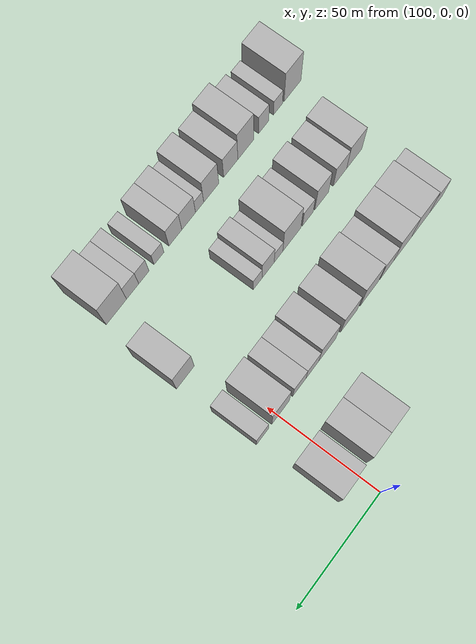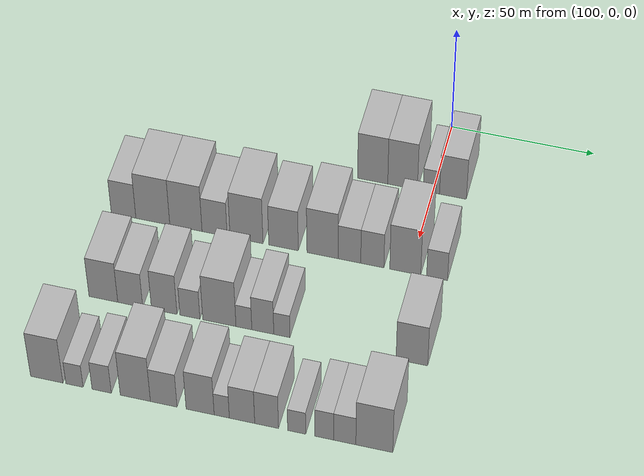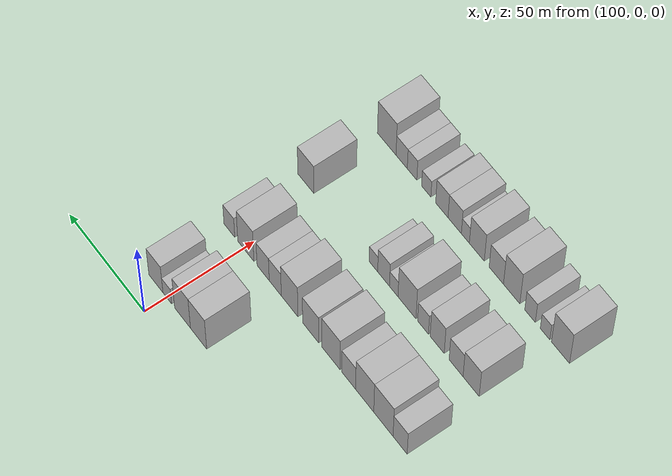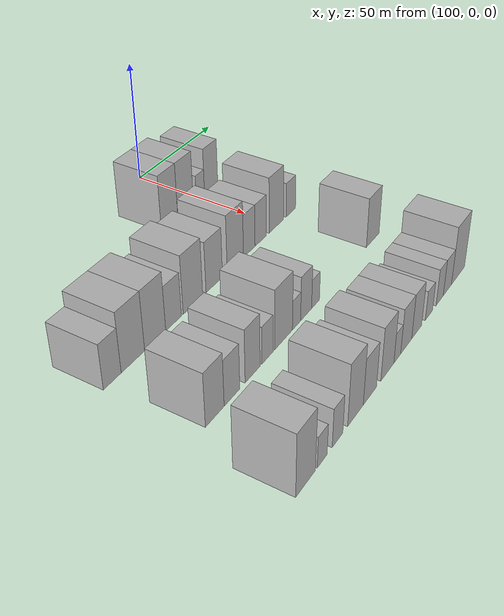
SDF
<sdf version="1.6">
 <world name="default">
  <model name="building_311">
   <static>1</static>
   <pose>120.0000 -20.9619 0 0.000000 0.000000 0.000000</pose>
   <link name="link">
    <pose>0 0 12.00 0 0 0</pose>
    <collision name="collision"><geometry><box><size>20.0000 10.5479 24.0000</size></box></geometry></collision>
    <visual name="visual">
     <cast_shadows>0</cast_shadows>
     <geometry><box><size>20.0000 10.5479 24.0000</size></box></geometry>
     <material>
      <script>
       <uri>model://HANNAS_wall/materials/scripts</uri>
       <uri>model://HANNAS_wall/materials/textures</uri>
       <name>vrc/HANNAS_wall</name>
      </script>
     </material>
    </visual>
   </link>
  </model>
  <model name="building_312">
   <static>1</static>
   <pose>120.0000 -10.5090 0 0.000000 0.000000 0.000000</pose>
   <link name="link">
    <pose>0 0 12.00 0 0 0</pose>
    <collision name="collision"><geometry><box><size>20.0000 10.3579 24.0000</size></box></geometry></collision>
    <visual name="visual">
     <cast_shadows>0</cast_shadows>
     <geometry><box><size>20.0000 10.3579 24.0000</size></box></geometry>
     <material>
      <script>
       <uri>model://HANNAS_wall/materials/scripts</uri>
       <uri>model://HANNAS_wall/materials/textures</uri>
       <name>vrc/HANNAS_wall</name>
      </script>
     </material>
    </visual>
   </link>
  </model>
  <model name="building_313">
   <static>1</static>
   <pose>120.0000 -0.4878 0 0.000000 0.000000 0.000000</pose>
   <link name="link">
    <pose>0 0 6.00 0 0 0</pose>
    <collision name="collision"><geometry><box><size>20.0000 5.6844 12.0000</size></box></geometry></collision>
    <visual name="visual">
     <cast_shadows>0</cast_shadows>
     <geometry><box><size>20.0000 5.6844 12.0000</size></box></geometry>
     <material>
      <script>
       <uri>model://HANNAS_wall/materials/scripts</uri>
       <uri>model://HANNAS_wall/materials/textures</uri>
       <name>vrc/HANNAS_wall</name>
      </script>
     </material>
    </visual>
   </link>
  </model>
  <model name="building_314">
   <static>1</static>
   <pose>120.0000 7.0255 0 0.000000 0.000000 0.000000</pose>
   <link name="link">
    <pose>0 0 10.50 0 0 0</pose>
    <collision name="collision"><geometry><box><size>20.0000 9.3422 21.0000</size></box></geometry></collision>
    <visual name="visual">
     <cast_shadows>0</cast_shadows>
     <geometry><box><size>20.0000 9.3422 21.0000</size></box></geometry>
     <material>
      <script>
       <uri>model://HANNAS_wall/materials/scripts</uri>
       <uri>model://HANNAS_wall/materials/textures</uri>
       <name>vrc/HANNAS_wall</name>
      </script>
     </material>
    </visual>
   </link>
  </model>
  <model name="building_433">
   <static>1</static>
   <pose>155.0000 -98.9779 0 0.000000 0.000000 0.000000</pose>
   <link name="link">
    <pose>0 0 9.00 0 0 0</pose>
    <collision name="collision"><geometry><box><size>20.0000 8.6512 18.0000</size></box></geometry></collision>
    <visual name="visual">
     <cast_shadows>0</cast_shadows>
     <geometry><box><size>20.0000 8.6512 18.0000</size></box></geometry>
     <material>
      <script>
       <uri>model://HANNAS_wall/materials/scripts</uri>
       <uri>model://HANNAS_wall/materials/textures</uri>
       <name>vrc/HANNAS_wall</name>
      </script>
     </material>
    </visual>
   </link>
  </model>
  <model name="building_434">
   <static>1</static>
   <pose>155.0000 -88.7057 0 0.000000 0.000000 0.000000</pose>
   <link name="link">
    <pose>0 0 12.00 0 0 0</pose>
    <collision name="collision"><geometry><box><size>20.0000 11.8933 24.0000</size></box></geometry></collision>
    <visual name="visual">
     <cast_shadows>0</cast_shadows>
     <geometry><box><size>20.0000 11.8933 24.0000</size></box></geometry>
     <material>
      <script>
       <uri>model://HANNAS_wall/materials/scripts</uri>
       <uri>model://HANNAS_wall/materials/textures</uri>
       <name>vrc/HANNAS_wall</name>
      </script>
     </material>
    </visual>
   </link>
  </model>
  <model name="building_435">
   <static>1</static>
   <pose>155.0000 -77.1176 0 0.000000 0.000000 0.000000</pose>
   <link name="link">
    <pose>0 0 12.00 0 0 0</pose>
    <collision name="collision"><geometry><box><size>20.0000 11.2829 24.0000</size></box></geometry></collision>
    <visual name="visual">
     <cast_shadows>0</cast_shadows>
     <geometry><box><size>20.0000 11.2829 24.0000</size></box></geometry>
     <material>
      <script>
       <uri>model://HANNAS_wall/materials/scripts</uri>
       <uri>model://HANNAS_wall/materials/textures</uri>
       <name>vrc/HANNAS_wall</name>
      </script>
     </material>
    </visual>
   </link>
  </model>
  <model name="building_436">
   <static>1</static>
   <pose>155.0000 -67.0982 0 0.000000 0.000000 0.000000</pose>
   <link name="link">
    <pose>0 0 9.00 0 0 0</pose>
    <collision name="collision"><geometry><box><size>20.0000 8.7557 18.0000</size></box></geometry></collision>
    <visual name="visual">
     <cast_shadows>0</cast_shadows>
     <geometry><box><size>20.0000 8.7557 18.0000</size></box></geometry>
     <material>
      <script>
       <uri>model://HANNAS_wall/materials/scripts</uri>
       <uri>model://HANNAS_wall/materials/textures</uri>
       <name>vrc/HANNAS_wall</name>
      </script>
     </material>
    </visual>
   </link>
  </model>
  <model name="building_437">
   <static>1</static>
   <pose>155.0000 -55.9960 0 0.000000 0.000000 0.000000</pose>
   <link name="link">
    <pose>0 0 12.00 0 0 0</pose>
    <collision name="collision"><geometry><box><size>20.0000 11.4488 24.0000</size></box></geometry></collision>
    <visual name="visual">
     <cast_shadows>0</cast_shadows>
     <geometry><box><size>20.0000 11.4488 24.0000</size></box></geometry>
     <material>
      <script>
       <uri>model://HANNAS_wall/materials/scripts</uri>
       <uri>model://HANNAS_wall/materials/textures</uri>
       <name>vrc/HANNAS_wall</name>
      </script>
     </material>
    </visual>
   </link>
  </model>
  <model name="building_438">
   <static>1</static>
   <pose>155.0000 -43.1745 0 0.000000 0.000000 0.000000</pose>
   <link name="link">
    <pose>0 0 10.50 0 0 0</pose>
    <collision name="collision"><geometry><box><size>20.0000 10.1943 21.0000</size></box></geometry></collision>
    <visual name="visual">
     <cast_shadows>0</cast_shadows>
     <geometry><box><size>20.0000 10.1943 21.0000</size></box></geometry>
     <material>
      <script>
       <uri>model://HANNAS_wall/materials/scripts</uri>
       <uri>model://HANNAS_wall/materials/textures</uri>
       <name>vrc/HANNAS_wall</name>
      </script>
     </material>
    </visual>
   </link>
  </model>
  <model name="building_439">
   <static>1</static>
   <pose>155.0000 -29.7411 0 0.000000 0.000000 0.000000</pose>
   <link name="link">
    <pose>0 0 12.00 0 0 0</pose>
    <collision name="collision"><geometry><box><size>20.0000 10.6724 24.0000</size></box></geometry></collision>
    <visual name="visual">
     <cast_shadows>0</cast_shadows>
     <geometry><box><size>20.0000 10.6724 24.0000</size></box></geometry>
     <material>
      <script>
       <uri>model://HANNAS_wall/materials/scripts</uri>
       <uri>model://HANNAS_wall/materials/textures</uri>
       <name>vrc/HANNAS_wall</name>
      </script>
     </material>
    </visual>
   </link>
  </model>
  <model name="building_440">
   <static>1</static>
   <pose>155.0000 -20.5011 0 0.000000 0.000000 0.000000</pose>
   <link name="link">
    <pose>0 0 9.00 0 0 0</pose>
    <collision name="collision"><geometry><box><size>20.0000 7.8076 18.0000</size></box></geometry></collision>
    <visual name="visual">
     <cast_shadows>0</cast_shadows>
     <geometry><box><size>20.0000 7.8076 18.0000</size></box></geometry>
     <material>
      <script>
       <uri>model://HANNAS_wall/materials/scripts</uri>
       <uri>model://HANNAS_wall/materials/textures</uri>
       <name>vrc/HANNAS_wall</name>
      </script>
     </material>
    </visual>
   </link>
  </model>
  <model name="building_441">
   <static>1</static>
   <pose>155.0000 -12.6420 0 0.000000 0.000000 0.000000</pose>
   <link name="link">
    <pose>0 0 9.00 0 0 0</pose>
    <collision name="collision"><geometry><box><size>20.0000 7.9105 18.0000</size></box></geometry></collision>
    <visual name="visual">
     <cast_shadows>0</cast_shadows>
     <geometry><box><size>20.0000 7.9105 18.0000</size></box></geometry>
     <material>
      <script>
       <uri>model://HANNAS_wall/materials/scripts</uri>
       <uri>model://HANNAS_wall/materials/textures</uri>
       <name>vrc/HANNAS_wall</name>
      </script>
     </material>
    </visual>
   </link>
  </model>
  <model name="building_442">
   <static>1</static>
   <pose>155.0000 -1.4177 0 0.000000 0.000000 0.000000</pose>
   <link name="link">
    <pose>0 0 12.00 0 0 0</pose>
    <collision name="collision"><geometry><box><size>20.0000 10.5380 24.0000</size></box></geometry></collision>
    <visual name="visual">
     <cast_shadows>0</cast_shadows>
     <geometry><box><size>20.0000 10.5380 24.0000</size></box></geometry>
     <material>
      <script>
       <uri>model://HANNAS_wall/materials/scripts</uri>
       <uri>model://HANNAS_wall/materials/textures</uri>
       <name>vrc/HANNAS_wall</name>
      </script>
     </material>
    </visual>
   </link>
  </model>
  <model name="building_443">
   <static>1</static>
   <pose>155.0000 9.4056 0 0.000000 0.000000 0.000000</pose>
   <link name="link">
    <pose>0 0 7.50 0 0 0</pose>
    <collision name="collision"><geometry><box><size>20.0000 7.1087 15.0000</size></box></geometry></collision>
    <visual name="visual">
     <cast_shadows>0</cast_shadows>
     <geometry><box><size>20.0000 7.1087 15.0000</size></box></geometry>
     <material>
      <script>
       <uri>model://HANNAS_wall/materials/scripts</uri>
       <uri>model://HANNAS_wall/materials/textures</uri>
       <name>vrc/HANNAS_wall</name>
      </script>
     </material>
    </visual>
   </link>
  </model>
  <model name="building_552">
   <static>1</static>
   <pose>190.0000 -95.2814 0 0.000000 0.000000 0.000000</pose>
   <link name="link">
    <pose>0 0 10.50 0 0 0</pose>
    <collision name="collision"><geometry><box><size>20.0000 9.8673 21.0000</size></box></geometry></collision>
    <visual name="visual">
     <cast_shadows>0</cast_shadows>
     <geometry><box><size>20.0000 9.8673 21.0000</size></box></geometry>
     <material>
      <script>
       <uri>model://HANNAS_wall/materials/scripts</uri>
       <uri>model://HANNAS_wall/materials/textures</uri>
       <name>vrc/HANNAS_wall</name>
      </script>
     </material>
    </visual>
   </link>
  </model>
  <model name="building_553">
   <static>1</static>
   <pose>190.0000 -86.0604 0 0.000000 0.000000 0.000000</pose>
   <link name="link">
    <pose>0 0 9.00 0 0 0</pose>
    <collision name="collision"><geometry><box><size>20.0000 8.5745 18.0000</size></box></geometry></collision>
    <visual name="visual">
     <cast_shadows>0</cast_shadows>
     <geometry><box><size>20.0000 8.5745 18.0000</size></box></geometry>
     <material>
      <script>
       <uri>model://HANNAS_wall/materials/scripts</uri>
       <uri>model://HANNAS_wall/materials/textures</uri>
       <name>vrc/HANNAS_wall</name>
      </script>
     </material>
    </visual>
   </link>
  </model>
  <model name="building_554">
   <static>1</static>
   <pose>190.0000 -74.4175 0 0.000000 0.000000 0.000000</pose>
   <link name="link">
    <pose>0 0 10.50 0 0 0</pose>
    <collision name="collision"><geometry><box><size>20.0000 8.7113 21.0000</size></box></geometry></collision>
    <visual name="visual">
     <cast_shadows>0</cast_shadows>
     <geometry><box><size>20.0000 8.7113 21.0000</size></box></geometry>
     <material>
      <script>
       <uri>model://HANNAS_wall/materials/scripts</uri>
       <uri>model://HANNAS_wall/materials/textures</uri>
       <name>vrc/HANNAS_wall</name>
      </script>
     </material>
    </visual>
   </link>
  </model>
  <model name="building_555">
   <static>1</static>
   <pose>190.0000 -65.6677 0 0.000000 0.000000 0.000000</pose>
   <link name="link">
    <pose>0 0 7.50 0 0 0</pose>
    <collision name="collision"><geometry><box><size>20.0000 6.7884 15.0000</size></box></geometry></collision>
    <visual name="visual">
     <cast_shadows>0</cast_shadows>
     <geometry><box><size>20.0000 6.7884 15.0000</size></box></geometry>
     <material>
      <script>
       <uri>model://HANNAS_wall/materials/scripts</uri>
       <uri>model://HANNAS_wall/materials/textures</uri>
       <name>vrc/HANNAS_wall</name>
      </script>
     </material>
    </visual>
   </link>
  </model>
  <model name="building_556">
   <static>1</static>
   <pose>190.0000 -55.6468 0 0.000000 0.000000 0.000000</pose>
   <link name="link">
    <pose>0 0 12.00 0 0 0</pose>
    <collision name="collision"><geometry><box><size>20.0000 11.2534 24.0000</size></box></geometry></collision>
    <visual name="visual">
     <cast_shadows>0</cast_shadows>
     <geometry><box><size>20.0000 11.2534 24.0000</size></box></geometry>
     <material>
      <script>
       <uri>model://HANNAS_wall/materials/scripts</uri>
       <uri>model://HANNAS_wall/materials/textures</uri>
       <name>vrc/HANNAS_wall</name>
      </script>
     </material>
    </visual>
   </link>
  </model>
  <model name="building_557">
   <static>1</static>
   <pose>190.0000 -47.3382 0 0.000000 0.000000 0.000000</pose>
   <link name="link">
    <pose>0 0 6.00 0 0 0</pose>
    <collision name="collision"><geometry><box><size>20.0000 5.3638 12.0000</size></box></geometry></collision>
    <visual name="visual">
     <cast_shadows>0</cast_shadows>
     <geometry><box><size>20.0000 5.3638 12.0000</size></box></geometry>
     <material>
      <script>
       <uri>model://HANNAS_wall/materials/scripts</uri>
       <uri>model://HANNAS_wall/materials/textures</uri>
       <name>vrc/HANNAS_wall</name>
      </script>
     </material>
    </visual>
   </link>
  </model>
  <model name="building_558">
   <static>1</static>
   <pose>190.0000 -40.9436 0 0.000000 0.000000 0.000000</pose>
   <link name="link">
    <pose>0 0 9.00 0 0 0</pose>
    <collision name="collision"><geometry><box><size>20.0000 7.4254 18.0000</size></box></geometry></collision>
    <visual name="visual">
     <cast_shadows>0</cast_shadows>
     <geometry><box><size>20.0000 7.4254 18.0000</size></box></geometry>
     <material>
      <script>
       <uri>model://HANNAS_wall/materials/scripts</uri>
       <uri>model://HANNAS_wall/materials/textures</uri>
       <name>vrc/HANNAS_wall</name>
      </script>
     </material>
    </visual>
   </link>
  </model>
  <model name="building_559">
   <static>1</static>
   <pose>190.0000 -34.5088 0 0.000000 0.000000 0.000000</pose>
   <link name="link">
    <pose>0 0 6.00 0 0 0</pose>
    <collision name="collision"><geometry><box><size>20.0000 5.4441 12.0000</size></box></geometry></collision>
    <visual name="visual">
     <cast_shadows>0</cast_shadows>
     <geometry><box><size>20.0000 5.4441 12.0000</size></box></geometry>
     <material>
      <script>
       <uri>model://HANNAS_wall/materials/scripts</uri>
       <uri>model://HANNAS_wall/materials/textures</uri>
       <name>vrc/HANNAS_wall</name>
      </script>
     </material>
    </visual>
   </link>
  </model>
  <model name="building_560">
   <static>1</static>
   <pose>190.0000 8.9475 0 0.000000 0.000000 0.000000</pose>
   <link name="link">
    <pose>0 0 10.50 0 0 0</pose>
    <collision name="collision"><geometry><box><size>20.0000 10.4895 21.0000</size></box></geometry></collision>
    <visual name="visual">
     <cast_shadows>0</cast_shadows>
     <geometry><box><size>20.0000 10.4895 21.0000</size></box></geometry>
     <material>
      <script>
       <uri>model://HANNAS_wall/materials/scripts</uri>
       <uri>model://HANNAS_wall/materials/textures</uri>
       <name>vrc/HANNAS_wall</name>
      </script>
     </material>
    </visual>
   </link>
  </model>
  <model name="building_665">
   <static>1</static>
   <pose>225.0000 -103.5030 0 0.000000 0.000000 0.000000</pose>
   <link name="link">
    <pose>0 0 12.00 0 0 0</pose>
    <collision name="collision"><geometry><box><size>20.0000 10.8943 24.0000</size></box></geometry></collision>
    <visual name="visual">
     <cast_shadows>0</cast_shadows>
     <geometry><box><size>20.0000 10.8943 24.0000</size></box></geometry>
     <material>
      <script>
       <uri>model://HANNAS_wall/materials/scripts</uri>
       <uri>model://HANNAS_wall/materials/textures</uri>
       <name>vrc/HANNAS_wall</name>
      </script>
     </material>
    </visual>
   </link>
  </model>
  <model name="building_666">
   <static>1</static>
   <pose>225.0000 -94.1608 0 0.000000 0.000000 0.000000</pose>
   <link name="link">
    <pose>0 0 6.00 0 0 0</pose>
    <collision name="collision"><geometry><box><size>20.0000 5.7901 12.0000</size></box></geometry></collision>
    <visual name="visual">
     <cast_shadows>0</cast_shadows>
     <geometry><box><size>20.0000 5.7901 12.0000</size></box></geometry>
     <material>
      <script>
       <uri>model://HANNAS_wall/materials/scripts</uri>
       <uri>model://HANNAS_wall/materials/textures</uri>
       <name>vrc/HANNAS_wall</name>
      </script>
     </material>
    </visual>
   </link>
  </model>
  <model name="building_667">
   <static>1</static>
   <pose>225.0000 -85.0388 0 0.000000 0.000000 0.000000</pose>
   <link name="link">
    <pose>0 0 7.50 0 0 0</pose>
    <collision name="collision"><geometry><box><size>20.0000 6.4537 15.0000</size></box></geometry></collision>
    <visual name="visual">
     <cast_shadows>0</cast_shadows>
     <geometry><box><size>20.0000 6.4537 15.0000</size></box></geometry>
     <material>
      <script>
       <uri>model://HANNAS_wall/materials/scripts</uri>
       <uri>model://HANNAS_wall/materials/textures</uri>
       <name>vrc/HANNAS_wall</name>
      </script>
     </material>
    </visual>
   </link>
  </model>
  <model name="building_668">
   <static>1</static>
   <pose>225.0000 -73.7819 0 0.000000 0.000000 0.000000</pose>
   <link name="link">
    <pose>0 0 12.00 0 0 0</pose>
    <collision name="collision"><geometry><box><size>20.0000 10.0603 24.0000</size></box></geometry></collision>
    <visual name="visual">
     <cast_shadows>0</cast_shadows>
     <geometry><box><size>20.0000 10.0603 24.0000</size></box></geometry>
     <material>
      <script>
       <uri>model://HANNAS_wall/materials/scripts</uri>
       <uri>model://HANNAS_wall/materials/textures</uri>
       <name>vrc/HANNAS_wall</name>
      </script>
     </material>
    </visual>
   </link>
  </model>
  <model name="building_669">
   <static>1</static>
   <pose>225.0000 -64.3145 0 0.000000 0.000000 0.000000</pose>
   <link name="link">
    <pose>0 0 9.00 0 0 0</pose>
    <collision name="collision"><geometry><box><size>20.0000 8.8744 18.0000</size></box></geometry></collision>
    <visual name="visual">
     <cast_shadows>0</cast_shadows>
     <geometry><box><size>20.0000 8.8744 18.0000</size></box></geometry>
     <material>
      <script>
       <uri>model://HANNAS_wall/materials/scripts</uri>
       <uri>model://HANNAS_wall/materials/textures</uri>
       <name>vrc/HANNAS_wall</name>
      </script>
     </material>
    </visual>
   </link>
  </model>
  <model name="building_670">
   <static>1</static>
   <pose>225.0000 -52.2280 0 0.000000 0.000000 0.000000</pose>
   <link name="link">
    <pose>0 0 10.50 0 0 0</pose>
    <collision name="collision"><geometry><box><size>20.0000 9.2987 21.0000</size></box></geometry></collision>
    <visual name="visual">
     <cast_shadows>0</cast_shadows>
     <geometry><box><size>20.0000 9.2987 21.0000</size></box></geometry>
     <material>
      <script>
       <uri>model://HANNAS_wall/materials/scripts</uri>
       <uri>model://HANNAS_wall/materials/textures</uri>
       <name>vrc/HANNAS_wall</name>
      </script>
     </material>
    </visual>
   </link>
  </model>
  <model name="building_671">
   <static>1</static>
   <pose>225.0000 -45.0747 0 0.000000 0.000000 0.000000</pose>
   <link name="link">
    <pose>0 0 6.00 0 0 0</pose>
    <collision name="collision"><geometry><box><size>20.0000 5.0080 12.0000</size></box></geometry></collision>
    <visual name="visual">
     <cast_shadows>0</cast_shadows>
     <geometry><box><size>20.0000 5.0080 12.0000</size></box></geometry>
     <material>
      <script>
       <uri>model://HANNAS_wall/materials/scripts</uri>
       <uri>model://HANNAS_wall/materials/textures</uri>
       <name>vrc/HANNAS_wall</name>
      </script>
     </material>
    </visual>
   </link>
  </model>
  <model name="building_672">
   <static>1</static>
   <pose>225.0000 -38.3841 0 0.000000 0.000000 0.000000</pose>
   <link name="link">
    <pose>0 0 9.00 0 0 0</pose>
    <collision name="collision"><geometry><box><size>20.0000 8.3732 18.0000</size></box></geometry></collision>
    <visual name="visual">
     <cast_shadows>0</cast_shadows>
     <geometry><box><size>20.0000 8.3732 18.0000</size></box></geometry>
     <material>
      <script>
       <uri>model://HANNAS_wall/materials/scripts</uri>
       <uri>model://HANNAS_wall/materials/textures</uri>
       <name>vrc/HANNAS_wall</name>
      </script>
     </material>
    </visual>
   </link>
  </model>
  <model name="building_673">
   <static>1</static>
   <pose>225.0000 -30.2880 0 0.000000 0.000000 0.000000</pose>
   <link name="link">
    <pose>0 0 9.00 0 0 0</pose>
    <collision name="collision"><geometry><box><size>20.0000 7.8189 18.0000</size></box></geometry></collision>
    <visual name="visual">
     <cast_shadows>0</cast_shadows>
     <geometry><box><size>20.0000 7.8189 18.0000</size></box></geometry>
     <material>
      <script>
       <uri>model://HANNAS_wall/materials/scripts</uri>
       <uri>model://HANNAS_wall/materials/textures</uri>
       <name>vrc/HANNAS_wall</name>
      </script>
     </material>
    </visual>
   </link>
  </model>
  <model name="building_674">
   <static>1</static>
   <pose>225.0000 -20.4112 0 0.000000 0.000000 0.000000</pose>
   <link name="link">
    <pose>0 0 6.00 0 0 0</pose>
    <collision name="collision"><geometry><box><size>20.0000 5.9347 12.0000</size></box></geometry></collision>
    <visual name="visual">
     <cast_shadows>0</cast_shadows>
     <geometry><box><size>20.0000 5.9347 12.0000</size></box></geometry>
     <material>
      <script>
       <uri>model://HANNAS_wall/materials/scripts</uri>
       <uri>model://HANNAS_wall/materials/textures</uri>
       <name>vrc/HANNAS_wall</name>
      </script>
     </material>
    </visual>
   </link>
  </model>
  <model name="building_675">
   <static>1</static>
   <pose>225.0000 -11.3813 0 0.000000 0.000000 0.000000</pose>
   <link name="link">
    <pose>0 0 7.50 0 0 0</pose>
    <collision name="collision"><geometry><box><size>20.0000 6.1250 15.0000</size></box></geometry></collision>
    <visual name="visual">
     <cast_shadows>0</cast_shadows>
     <geometry><box><size>20.0000 6.1250 15.0000</size></box></geometry>
     <material>
      <script>
       <uri>model://HANNAS_wall/materials/scripts</uri>
       <uri>model://HANNAS_wall/materials/textures</uri>
       <name>vrc/HANNAS_wall</name>
      </script>
     </material>
    </visual>
   </link>
  </model>
  <model name="building_676">
   <static>1</static>
   <pose>225.0000 -4.7107 0 0.000000 0.000000 0.000000</pose>
   <link name="link">
    <pose>0 0 7.50 0 0 0</pose>
    <collision name="collision"><geometry><box><size>20.0000 7.2162 15.0000</size></box></geometry></collision>
    <visual name="visual">
     <cast_shadows>0</cast_shadows>
     <geometry><box><size>20.0000 7.2162 15.0000</size></box></geometry>
     <material>
      <script>
       <uri>model://HANNAS_wall/materials/scripts</uri>
       <uri>model://HANNAS_wall/materials/textures</uri>
       <name>vrc/HANNAS_wall</name>
      </script>
     </material>
    </visual>
   </link>
  </model>
  <model name="building_677">
   <static>1</static>
   <pose>225.0000 4.8874 0 0.000000 0.000000 0.000000</pose>
   <link name="link">
    <pose>0 0 12.00 0 0 0</pose>
    <collision name="collision"><geometry><box><size>20.0000 11.9801 24.0000</size></box></geometry></collision>
    <visual name="visual">
     <cast_shadows>0</cast_shadows>
     <geometry><box><size>20.0000 11.9801 24.0000</size></box></geometry>
     <material>
      <script>
       <uri>model://HANNAS_wall/materials/scripts</uri>
       <uri>model://HANNAS_wall/materials/textures</uri>
       <name>vrc/HANNAS_wall</name>
      </script>
     </material>
    </visual>
   </link>
  </model>
 </world>
</sdf>
